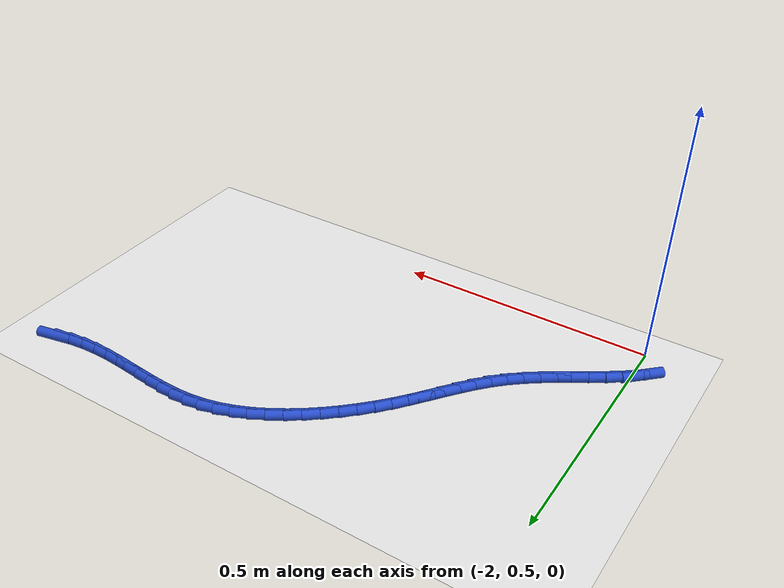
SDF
<sdf version="1.6">
 <world name="default">
  <model name="ground_plane">
   <static>1</static>
   <link name="link">
    <collision name="collision">
     <geometry><plane><normal>0 0 1</normal><size>100 100</size></plane></geometry>
     <surface><friction><ode><mu>100</mu><mu2>50</mu2></ode></friction></surface>
    </collision>
    <visual name="visual">
     <cast_shadows>0</cast_shadows>
     <geometry><plane><normal>0 0 1</normal><size>100 100</size></plane></geometry>
     <material>
      <script><uri>file://media/materials/scripts/gazebo.material</uri><name>Gazebo/WhiteGlow</name></script>
     </material>
    </visual>
   </link>
  </model>
  <model name="line">
   <link name="link_57">
    <pose>-1.055577597285404 1.0763090571159561 0.01 0 1.57 0.2096859835090827</pose>
    <collision name="collision">
     <geometry><cylinder><radius>0.01</radius><length>0.08</length></cylinder></geometry>
    </collision>
    <visual name="visual">
     <material>
      <script><name>Gazebo/Blue</name><uri>file://media/materials/scripts/gazebo.material</uri></script>
     </material>
     <geometry><cylinder><radius>0.01</radius><length>0.08</length></cylinder></geometry>
    </visual>
   </link>
   <link name="link_58">
    <pose>-1.0869292205018035 1.069636986998565 0.01 0 1.57 0.12062834429621352</pose>
    <collision name="collision">
     <geometry><cylinder><radius>0.01</radius><length>0.08</length></cylinder></geometry>
    </collision>
    <visual name="visual">
     <material>
      <script><name>Gazebo/Blue</name><uri>file://media/materials/scripts/gazebo.material</uri></script>
     </material>
     <geometry><cylinder><radius>0.01</radius><length>0.08</length></cylinder></geometry>
    </visual>
   </link>
   <link name="link_59">
    <pose>-1.1181087774655243 1.0658574988317433 0.01 0 1.57 0.04272394404241163</pose>
    <collision name="collision">
     <geometry><cylinder><radius>0.01</radius><length>0.08</length></cylinder></geometry>
    </collision>
    <visual name="visual">
     <material>
      <script><name>Gazebo/Blue</name><uri>file://media/materials/scripts/gazebo.material</uri></script>
     </material>
     <geometry><cylinder><radius>0.01</radius><length>0.08</length></cylinder></geometry>
    </visual>
   </link>
   <link name="link_60">
    <pose>-1.1490848193245344 1.0645332743366924 0.01 0 1.57 -0.01863873819086451</pose>
    <collision name="collision">
     <geometry><cylinder><radius>0.01</radius><length>0.08</length></cylinder></geometry>
    </collision>
    <visual name="visual">
     <material>
      <script><name>Gazebo/Blue</name><uri>file://media/materials/scripts/gazebo.material</uri></script>
     </material>
     <geometry><cylinder><radius>0.01</radius><length>0.08</length></cylinder></geometry>
    </visual>
   </link>
   <link name="link_61">
    <pose>-1.1798422187790223 1.065106619847994 0.01 0 1.57 -0.06259813172790533</pose>
    <collision name="collision">
     <geometry><cylinder><radius>0.01</radius><length>0.08</length></cylinder></geometry>
    </collision>
    <visual name="visual">
     <material>
      <script><name>Gazebo/Blue</name><uri>file://media/materials/scripts/gazebo.material</uri></script>
     </material>
     <geometry><cylinder><radius>0.01</radius><length>0.08</length></cylinder></geometry>
    </visual>
   </link>
   <link name="link_62">
    <pose>-1.2103658485291757 1.0670198417002306 0.01 0 1.57 -0.08879736206167604</pose>
    <collision name="collision">
     <geometry><cylinder><radius>0.01</radius><length>0.08</length></cylinder></geometry>
    </collision>
    <visual name="visual">
     <material>
      <script><name>Gazebo/Blue</name><uri>file://media/materials/scripts/gazebo.material</uri></script>
     </material>
     <geometry><cylinder><radius>0.01</radius><length>0.08</length></cylinder></geometry>
    </visual>
   </link>
   <link name="link_63">
    <pose>-1.2406405812751828 1.0697152462279833 0.01 0 1.57 -0.0969897783950628</pose>
    <collision name="collision">
     <geometry><cylinder><radius>0.01</radius><length>0.08</length></cylinder></geometry>
    </collision>
    <visual name="visual">
     <material>
      <script><name>Gazebo/Blue</name><uri>file://media/materials/scripts/gazebo.material</uri></script>
     </material>
     <geometry><cylinder><radius>0.01</radius><length>0.08</length></cylinder></geometry>
    </visual>
   </link>
   <link name="link_64">
    <pose>-1.270651289717232 1.072635139765835 0.01 0 1.57 -0.08678294050183206</pose>
    <collision name="collision">
     <geometry><cylinder><radius>0.01</radius><length>0.08</length></cylinder></geometry>
    </collision>
    <visual name="visual">
     <material>
      <script><name>Gazebo/Blue</name><uri>file://media/materials/scripts/gazebo.material</uri></script>
     </material>
     <geometry><cylinder><radius>0.01</radius><length>0.08</length></cylinder></geometry>
    </visual>
   </link>
   <link name="link_65">
    <pose>-1.300382846555511 1.075221828648367 0.01 0 1.57 -0.05754331067035591</pose>
    <collision name="collision">
     <geometry><cylinder><radius>0.01</radius><length>0.08</length></cylinder></geometry>
    </collision>
    <visual name="visual">
     <material>
      <script><name>Gazebo/Blue</name><uri>file://media/materials/scripts/gazebo.material</uri></script>
     </material>
     <geometry><cylinder><radius>0.01</radius><length>0.08</length></cylinder></geometry>
    </visual>
   </link>
   <link name="link_66">
    <pose>-1.3298201244902086 1.0769176192101617 0.01 0 1.57 -0.008486464217886838</pose>
    <collision name="collision">
     <geometry><cylinder><radius>0.01</radius><length>0.08</length></cylinder></geometry>
    </collision>
    <visual name="visual">
     <material>
      <script><name>Gazebo/Blue</name><uri>file://media/materials/scripts/gazebo.material</uri></script>
     </material>
     <geometry><cylinder><radius>0.01</radius><length>0.08</length></cylinder></geometry>
    </visual>
   </link>
   <link name="link_67">
    <pose>-1.3589479962215116 1.077164817785801 0.01 0 1.57 0.0609965730885073</pose>
    <collision name="collision">
     <geometry><cylinder><radius>0.01</radius><length>0.08</length></cylinder></geometry>
    </collision>
    <visual name="visual">
     <material>
      <script><name>Gazebo/Blue</name><uri>file://media/materials/scripts/gazebo.material</uri></script>
     </material>
     <geometry><cylinder><radius>0.01</radius><length>0.08</length></cylinder></geometry>
    </visual>
   </link>
   <link name="link_68">
    <pose>-1.3877513344496097 1.0754057307098672 0.01 0 1.57 0.15063431623236334</pose>
    <collision name="collision">
     <geometry><cylinder><radius>0.01</radius><length>0.08</length></cylinder></geometry>
    </collision>
    <visual name="visual">
     <material>
      <script><name>Gazebo/Blue</name><uri>file://media/materials/scripts/gazebo.material</uri></script>
     </material>
     <geometry><cylinder><radius>0.01</radius><length>0.08</length></cylinder></geometry>
    </visual>
   </link>
   <link name="link_69">
    <pose>-1.416214802204849 1.071085429285288 0.01 0 1.57 0.2501114201915283</pose>
    <collision name="collision">
     <geometry><cylinder><radius>0.01</radius><length>0.08</length></cylinder></geometry>
    </collision>
    <visual name="visual">
     <material>
      <script><name>Gazebo/Blue</name><uri>file://media/materials/scripts/gazebo.material</uri></script>
     </material>
     <geometry><cylinder><radius>0.01</radius><length>0.08</length></cylinder></geometry>
    </visual>
   </link>
   <link name="link_70">
    <pose>-1.4443032747542166 1.0639099309726727 0.01 0 1.57 0.34241282268030326</pose>
    <collision name="collision">
     <geometry><cylinder><radius>0.01</radius><length>0.08</length></cylinder></geometry>
    </collision>
    <visual name="visual">
     <material>
      <script><name>Gazebo/Blue</name><uri>file://media/materials/scripts/gazebo.material</uri></script>
     </material>
     <geometry><cylinder><radius>0.01</radius><length>0.08</length></cylinder></geometry>
    </visual>
   </link>
   <link name="link_71">
    <pose>-1.4719458836809427 1.0540566140816165 0.01 0 1.57 0.4258939403074208</pose>
    <collision name="collision">
     <geometry><cylinder><radius>0.01</radius><length>0.08</length></cylinder></geometry>
    </collision>
    <visual name="visual">
     <material>
      <script><name>Gazebo/Blue</name><uri>file://media/materials/scripts/gazebo.material</uri></script>
     </material>
     <geometry><cylinder><radius>0.01</radius><length>0.08</length></cylinder></geometry>
    </visual>
   </link>
   <link name="link_72">
    <pose>-1.499068005570366 1.0417523750130102 0.01 0 1.57 0.5010588615956438</pose>
    <collision name="collision">
     <geometry><cylinder><radius>0.01</radius><length>0.08</length></cylinder></geometry>
    </collision>
    <visual name="visual">
     <material>
      <script><name>Gazebo/Blue</name><uri>file://media/materials/scripts/gazebo.material</uri></script>
     </material>
     <geometry><cylinder><radius>0.01</radius><length>0.08</length></cylinder></geometry>
    </visual>
   </link>
   <link name="link_73">
    <pose>-1.525595017007821 1.0272241101677424 0.01 0 1.57 0.5686746742945668</pose>
    <collision name="collision">
     <geometry><cylinder><radius>0.01</radius><length>0.08</length></cylinder></geometry>
    </collision>
    <visual name="visual">
     <material>
      <script><name>Gazebo/Blue</name><uri>file://media/materials/scripts/gazebo.material</uri></script>
     </material>
     <geometry><cylinder><radius>0.01</radius><length>0.08</length></cylinder></geometry>
    </visual>
   </link>
   <link name="link_74">
    <pose>-1.5514522945786464 1.0106987159467045 0.01 0 1.57 0.629621016350669</pose>
    <collision name="collision">
     <geometry><cylinder><radius>0.01</radius><length>0.08</length></cylinder></geometry>
    </collision>
    <visual name="visual">
     <material>
      <script><name>Gazebo/Blue</name><uri>file://media/materials/scripts/gazebo.material</uri></script>
     </material>
     <geometry><cylinder><radius>0.01</radius><length>0.08</length></cylinder></geometry>
    </visual>
   </link>
   <link name="link_75">
    <pose>-1.5765652148681784 0.9924030887507862 0.01 0 1.57 0.6847944061406751</pose>
    <collision name="collision">
     <geometry><cylinder><radius>0.01</radius><length>0.08</length></cylinder></geometry>
    </collision>
    <visual name="visual">
     <material>
      <script><name>Gazebo/Blue</name><uri>file://media/materials/scripts/gazebo.material</uri></script>
     </material>
     <geometry><cylinder><radius>0.01</radius><length>0.08</length></cylinder></geometry>
    </visual>
   </link>
   <link name="link_76">
    <pose>-1.6008591544617534 0.9725641249808775 0.01 0 1.57 0.7350559454050042</pose>
    <collision name="collision">
     <geometry><cylinder><radius>0.01</radius><length>0.08</length></cylinder></geometry>
    </collision>
    <visual name="visual">
     <material>
      <script><name>Gazebo/Blue</name><uri>file://media/materials/scripts/gazebo.material</uri></script>
     </material>
     <geometry><cylinder><radius>0.01</radius><length>0.08</length></cylinder></geometry>
    </visual>
   </link>
   <link name="link_77">
    <pose>-1.6242594899447091 0.9514087210378683 0.01 0 1.57 0.7812090075811875</pose>
    <collision name="collision">
     <geometry><cylinder><radius>0.01</radius><length>0.08</length></cylinder></geometry>
    </collision>
    <visual name="visual">
     <material>
      <script><name>Gazebo/Blue</name><uri>file://media/materials/scripts/gazebo.material</uri></script>
     </material>
     <geometry><cylinder><radius>0.01</radius><length>0.08</length></cylinder></geometry>
    </visual>
   </link>
   <link name="link_78">
    <pose>-1.6466915979023815 0.9291637733226494 0.01 0 1.57 0.8239960546581162</pose>
    <collision name="collision">
     <geometry><cylinder><radius>0.01</radius><length>0.08</length></cylinder></geometry>
    </collision>
    <visual name="visual">
     <material>
      <script><name>Gazebo/Blue</name><uri>file://media/materials/scripts/gazebo.material</uri></script>
     </material>
     <geometry><cylinder><radius>0.01</radius><length>0.08</length></cylinder></geometry>
    </visual>
   </link>
   <link name="link_79">
    <pose>-1.6680808549201078 0.9060561782361097 0.01 0 1.57 0.8641072711640431</pose>
    <collision name="collision">
     <geometry><cylinder><radius>0.01</radius><length>0.08</length></cylinder></geometry>
    </collision>
    <visual name="visual">
     <material>
      <script><name>Gazebo/Blue</name><uri>file://media/materials/scripts/gazebo.material</uri></script>
     </material>
     <geometry><cylinder><radius>0.01</radius><length>0.08</length></cylinder></geometry>
    </visual>
   </link>
   <link name="link_80">
    <pose>-1.6883526375832258 0.8823128321791409 0.01 0 1.57 0.9015989486602485</pose>
    <collision name="collision">
     <geometry><cylinder><radius>0.01</radius><length>0.08</length></cylinder></geometry>
    </collision>
    <visual name="visual">
     <material>
      <script><name>Gazebo/Blue</name><uri>file://media/materials/scripts/gazebo.material</uri></script>
     </material>
     <geometry><cylinder><radius>0.01</radius><length>0.08</length></cylinder></geometry>
    </visual>
   </link>
   <link name="link_81">
    <pose>-1.7074551787720733 0.8581614004706966 0.01 0 1.57 0.928537279646552</pose>
    <collision name="collision">
     <geometry><cylinder><radius>0.01</radius><length>0.08</length></cylinder></geometry>
    </collision>
    <visual name="visual">
     <material>
      <script><name>Gazebo/Blue</name><uri>file://media/materials/scripts/gazebo.material</uri></script>
     </material>
     <geometry><cylinder><radius>0.01</radius><length>0.08</length></cylinder></geometry>
    </visual>
   </link>
   <link name="link_82">
    <pose>-1.7256490306088828 0.833840055290408 0.01 0 1.57 0.9382677062329705</pose>
    <collision name="collision">
     <geometry><cylinder><radius>0.01</radius><length>0.08</length></cylinder></geometry>
    </collision>
    <visual name="visual">
     <material>
      <script><name>Gazebo/Blue</name><uri>file://media/materials/scripts/gazebo.material</uri></script>
     </material>
     <geometry><cylinder><radius>0.01</radius><length>0.08</length></cylinder></geometry>
    </visual>
   </link>
   <link name="link_83">
    <pose>-1.74342084032053 0.8095945749767491 0.01 0 1.57 0.9300104268267017</pose>
    <collision name="collision">
     <geometry><cylinder><radius>0.01</radius><length>0.08</length></cylinder></geometry>
    </collision>
    <visual name="visual">
     <material>
      <script><name>Gazebo/Blue</name><uri>file://media/materials/scripts/gazebo.material</uri></script>
     </material>
     <geometry><cylinder><radius>0.01</radius><length>0.08</length></cylinder></geometry>
    </visual>
   </link>
   <link name="link_84">
    <pose>-1.7612623003858132 0.785670907597599 0.01 0 1.57 0.9034590284522773</pose>
    <collision name="collision">
     <geometry><cylinder><radius>0.01</radius><length>0.08</length></cylinder></geometry>
    </collision>
    <visual name="visual">
     <material>
      <script><name>Gazebo/Blue</name><uri>file://media/materials/scripts/gazebo.material</uri></script>
     </material>
     <geometry><cylinder><radius>0.01</radius><length>0.08</length></cylinder></geometry>
    </visual>
   </link>
   <link name="link_85">
    <pose>-1.7796651032835324 0.7623150012208368 0.01 0 1.57 0.8587544768595181</pose>
    <collision name="collision">
     <geometry><cylinder><radius>0.01</radius><length>0.08</length></cylinder></geometry>
    </collision>
    <visual name="visual">
     <material>
      <script><name>Gazebo/Blue</name><uri>file://media/materials/scripts/gazebo.material</uri></script>
     </material>
     <geometry><cylinder><radius>0.01</radius><length>0.08</length></cylinder></geometry>
    </visual>
   </link>
   <link name="link_86">
    <pose>-1.799120941492485 0.7397728039143416 0.01 0 1.57 0.7967427550719318</pose>
    <collision name="collision">
     <geometry><cylinder><radius>0.01</radius><length>0.08</length></cylinder></geometry>
    </collision>
    <visual name="visual">
     <material>
      <script><name>Gazebo/Blue</name><uri>file://media/materials/scripts/gazebo.material</uri></script>
     </material>
     <geometry><cylinder><radius>0.01</radius><length>0.08</length></cylinder></geometry>
    </visual>
   </link>
   <link name="link_87">
    <pose>-1.8201215074914712 0.7182902637459925 0.01 0 1.57 0.7234101350019343</pose>
    <collision name="collision">
     <geometry><cylinder><radius>0.01</radius><length>0.08</length></cylinder></geometry>
    </collision>
    <visual name="visual">
     <material>
      <script><name>Gazebo/Blue</name><uri>file://media/materials/scripts/gazebo.material</uri></script>
     </material>
     <geometry><cylinder><radius>0.01</radius><length>0.08</length></cylinder></geometry>
    </visual>
   </link>
   <link name="link_88">
    <pose>-1.8430392401374756 0.6980511694937541 0.01 0 1.57 0.6635108750123331</pose>
    <collision name="collision">
     <geometry><cylinder><radius>0.01</radius><length>0.08</length></cylinder></geometry>
    </collision>
    <visual name="visual">
     <material>
      <script><name>Gazebo/Blue</name><uri>file://media/materials/scripts/gazebo.material</uri></script>
     </material>
     <geometry><cylinder><radius>0.01</radius><length>0.08</length></cylinder></geometry>
    </visual>
   </link>
   <link name="link_89">
    <pose>-1.8675605564165008 0.6788817305873329 0.01 0 1.57 0.6238506844131694</pose>
    <collision name="collision">
     <geometry><cylinder><radius>0.01</radius><length>0.08</length></cylinder></geometry>
    </collision>
    <visual name="visual">
     <material>
      <script><name>Gazebo/Blue</name><uri>file://media/materials/scripts/gazebo.material</uri></script>
     </material>
     <geometry><cylinder><radius>0.01</radius><length>0.08</length></cylinder></geometry>
    </visual>
   </link>
   <link name="link_90">
    <pose>-1.8931270500324324 0.6604805457294866 0.01 0 1.57 0.6028886403974532</pose>
    <collision name="collision">
     <geometry><cylinder><radius>0.01</radius><length>0.08</length></cylinder></geometry>
    </collision>
    <visual name="visual">
     <material>
      <script><name>Gazebo/Blue</name><uri>file://media/materials/scripts/gazebo.material</uri></script>
     </material>
     <geometry><cylinder><radius>0.01</radius><length>0.08</length></cylinder></geometry>
    </visual>
   </link>
   <link name="link_91">
    <pose>-1.919180011248796 0.6425460554589109 0.01 0 1.57 0.5998686043924615</pose>
    <collision name="collision">
     <geometry><cylinder><radius>0.01</radius><length>0.08</length></cylinder></geometry>
    </collision>
    <visual name="visual">
     <material>
      <script><name>Gazebo/Blue</name><uri>file://media/materials/scripts/gazebo.material</uri></script>
     </material>
     <geometry><cylinder><radius>0.01</radius><length>0.08</length></cylinder></geometry>
    </visual>
   </link>
   <link name="link_92">
    <pose>-1.9451607303291194 0.6247767003143021 0.01 0 1.57 0.6149742555238573</pose>
    <collision name="collision">
     <geometry><cylinder><radius>0.01</radius><length>0.08</length></cylinder></geometry>
    </collision>
    <visual name="visual">
     <material>
      <script><name>Gazebo/Blue</name><uri>file://media/materials/scripts/gazebo.material</uri></script>
     </material>
     <geometry><cylinder><radius>0.01</radius><length>0.08</length></cylinder></geometry>
    </visual>
   </link>
   <link name="link_93">
    <pose>-1.9705104975369272 0.6068709208343561 0.01 0 1.57 0.649400204399208</pose>
    <collision name="collision">
     <geometry><cylinder><radius>0.01</radius><length>0.08</length></cylinder></geometry>
    </collision>
    <visual name="visual">
     <material>
      <script><name>Gazebo/Blue</name><uri>file://media/materials/scripts/gazebo.material</uri></script>
     </material>
     <geometry><cylinder><radius>0.01</radius><length>0.08</length></cylinder></geometry>
    </visual>
   </link>
   <link name="link_94">
    <pose>-1.9946706031357462 0.5885271575577682 0.01 0 1.57 0.705356870745785</pose>
    <collision name="collision">
     <geometry><cylinder><radius>0.01</radius><length>0.08</length></cylinder></geometry>
    </collision>
    <visual name="visual">
     <material>
      <script><name>Gazebo/Blue</name><uri>file://media/materials/scripts/gazebo.material</uri></script>
     </material>
     <geometry><cylinder><radius>0.01</radius><length>0.08</length></cylinder></geometry>
    </visual>
   </link>
   <link name="link_95">
    <pose>-2.0170823373891023 0.5694438510232348 0.01 0 1.57 0.7858892531615221</pose>
    <collision name="collision">
     <geometry><cylinder><radius>0.01</radius><length>0.08</length></cylinder></geometry>
    </collision>
    <visual name="visual">
     <material>
      <script><name>Gazebo/Blue</name><uri>file://media/materials/scripts/gazebo.material</uri></script>
     </material>
     <geometry><cylinder><radius>0.01</radius><length>0.08</length></cylinder></geometry>
    </visual>
   </link>
  </model>
 </world>
</sdf>
